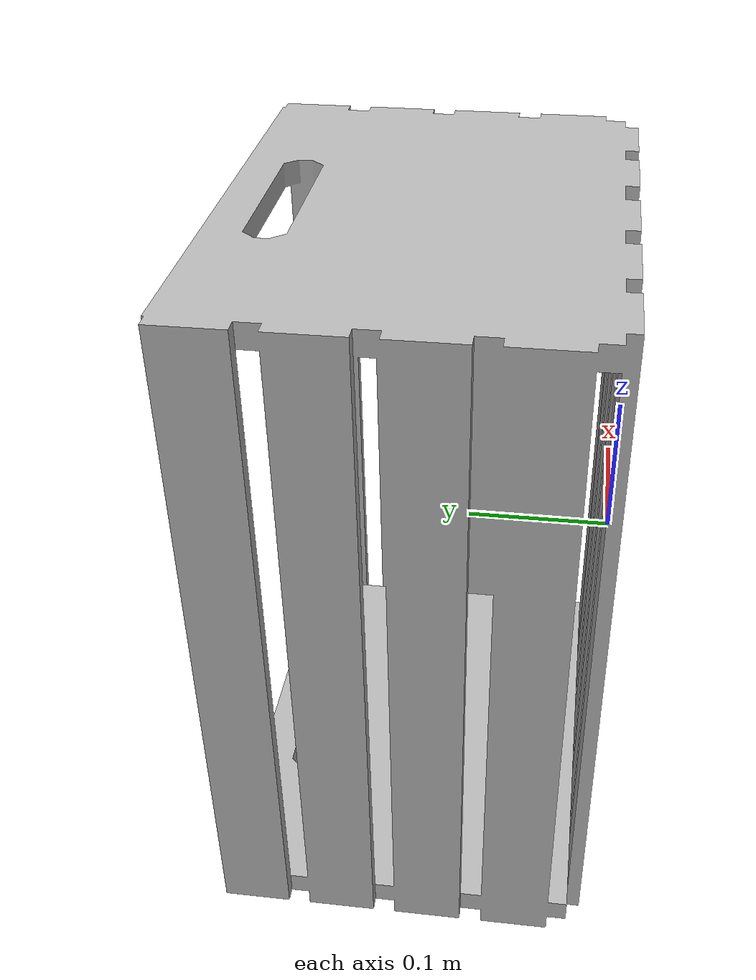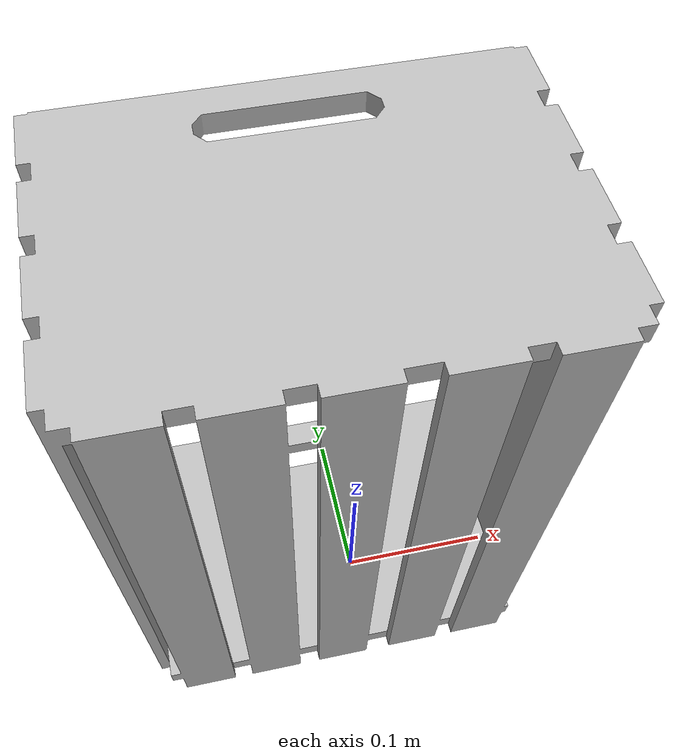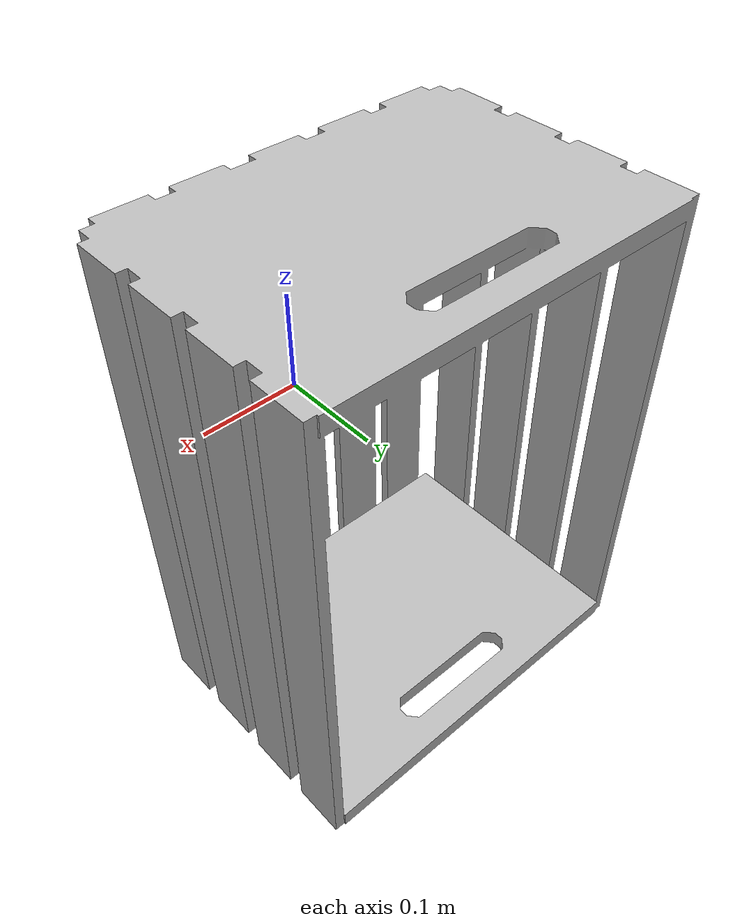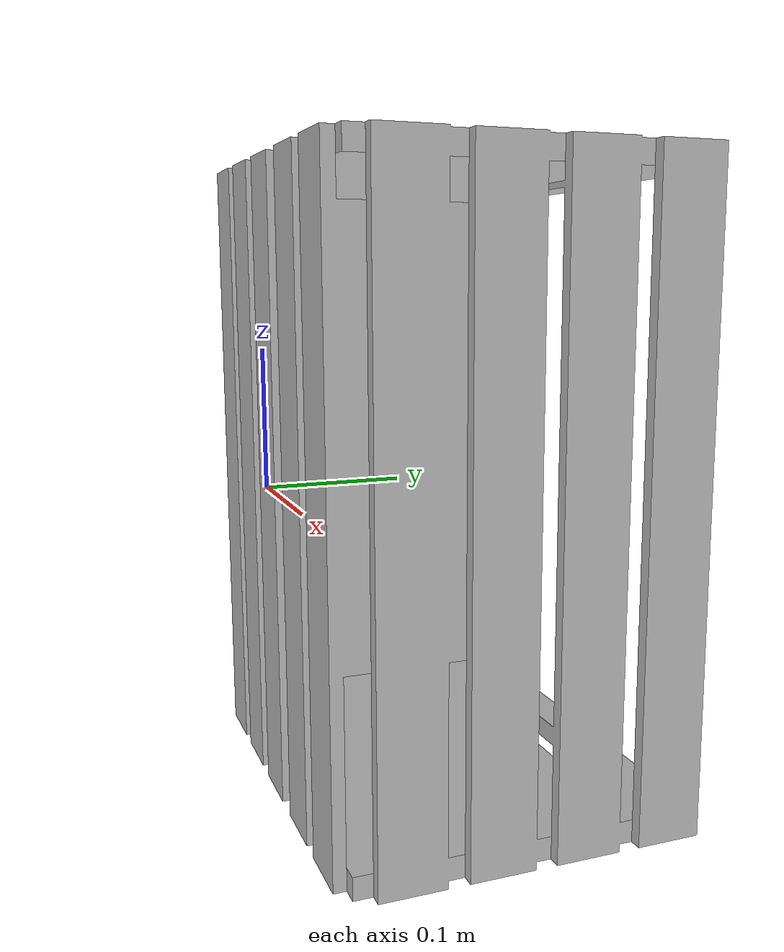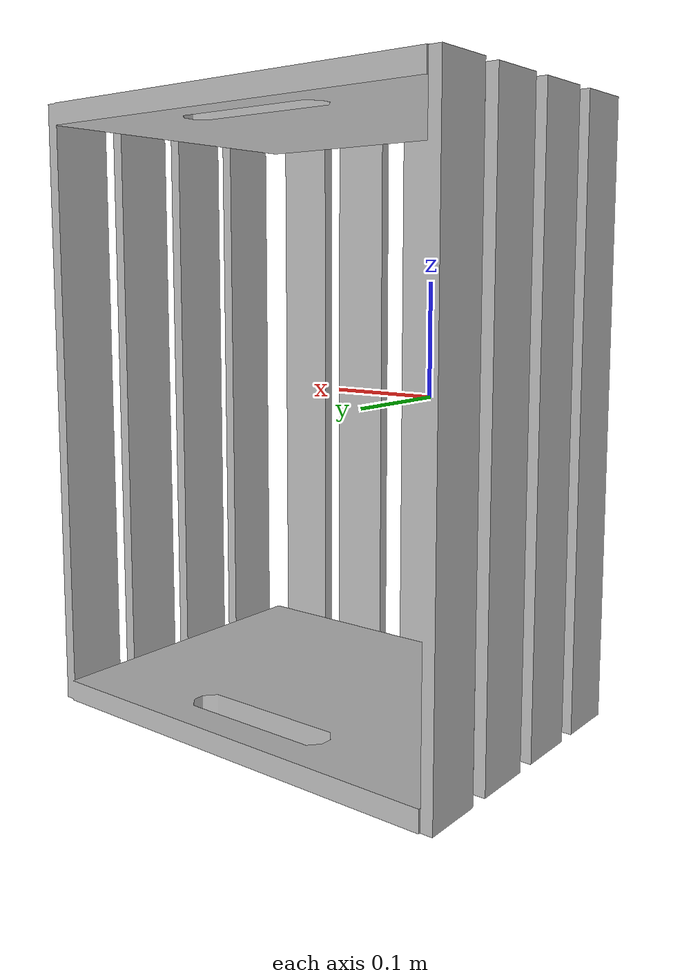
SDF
<?xml version="1.0"?>
<sdf version="1.5">
  <model name="wooden_box">
    <pose>0 0 0 0 0 0</pose>
    <link name="link">
      <collision name="collision">
        <pose>0 0 0 0 0 0</pose>
        <geometry>
          <mesh>
            <uri>file://wooden_box/meshes/wooden_box_v1.obj</uri>
          </mesh>
        </geometry>
      </collision>
      <visual name="visual">
        <pose>0 0 0 0 0 0 </pose>
        <geometry>
          <mesh>
            <uri>file://wooden_box/meshes/wooden_box_v1.obj</uri>
          </mesh>
        </geometry>
      </visual>
      <inertial>
        <mass>10</mass>
      </inertial>
    </link>
  </model>
</sdf>
